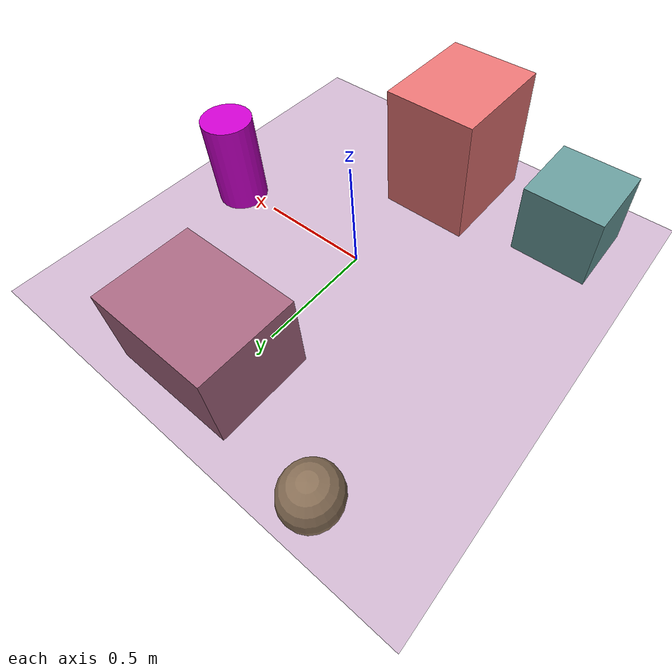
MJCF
<mujoco>
   <asset>
<texture type="skybox" builtin="gradient" rgb1="0.9 0.5 0.7" rgb2="0.9 0.2 0.2" width="256" height="256"/>
<texture name="checker_0" builtin="checker" type="2d" rgb1="0.7 0.4 0.8" rgb2="0.1 0.8 0.4" width="200" height="200"/>
<texture name="flat_1" builtin="flat" rgb1="0.8 0.0 0.8" rgb2="0.8 0.0 0.8"  width="200" height="200"/>
<texture name="checker_2" builtin="checker" type="2d" rgb1="0.6 0.1 0.1" rgb2="0.5 0.8 0.6" width="200" height="200"/>
<texture name="gradient_3" builtin="gradient" rgb1="0.8 0.5 0.5" rgb2="0.5 0.3 0.5" width="200" height="200"/>
<texture name="checker_4" builtin="checker" type="2d" rgb1="1.0 0.3 0.0" rgb2="0.8 0.6 0.9" width="200" height="200"/><material name="checker_0_mat" reflectance="0" texrepeat="5 5" texture="checker_0" texuniform="false" />
<material name="flat_1_mat" reflectance="0" texture="flat_1" texuniform="true"/>
<material name="checker_2_mat" reflectance="0" texrepeat="6 6" texture="checker_2" texuniform="false" />
<material name="gradient_3_mat" reflectance="0" texture="gradient_3" texuniform="true"/>
<material name="checker_4_mat" reflectance="0" texrepeat="5 5" texture="checker_4" texuniform="false" />
   </asset>

   <worldbody>
      <light diffuse=".9 .9 .9" pos="0 0 3" dir="0 0 -1"/>
     <geom type="plane" size="1 1 0.1" rgba="0.8 0.7 0.8 1"/>
<geom type="box" pos="-0.65 -0.64 0.17" size="0.17 0.17 0.17" material="checker_0_mat" />
<geom type="cylinder" pos="0.69 0.01 0.21" size="0.11 0.21 0.21" material="flat_1_mat" />
<geom type="sphere" pos="-0.56 0.86 0.11" size="0.11 0.11 0.11" material="checker_2_mat" />
<geom type="box" pos="0.1 0.69 0.18" size="0.27 0.2 0.18" material="gradient_3_mat" />
<geom type="box" pos="-0.07 -0.62 0.29" size="0.2 0.24 0.29" material="checker_4_mat" /><camera euler="60 0 180" fovy="60" name="camera_a" pos="0 -1.5 1"></camera>   </worldbody>
</mujoco>
